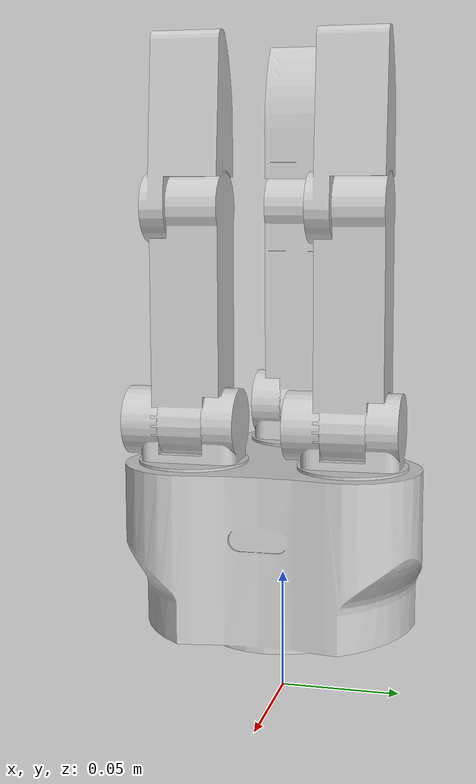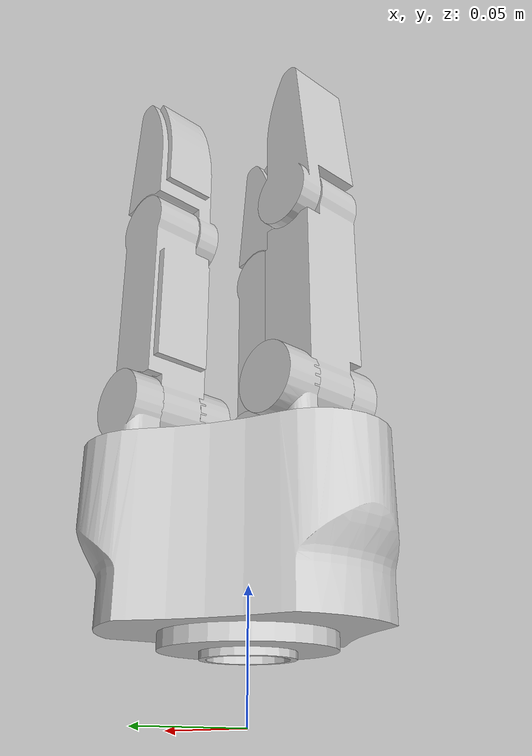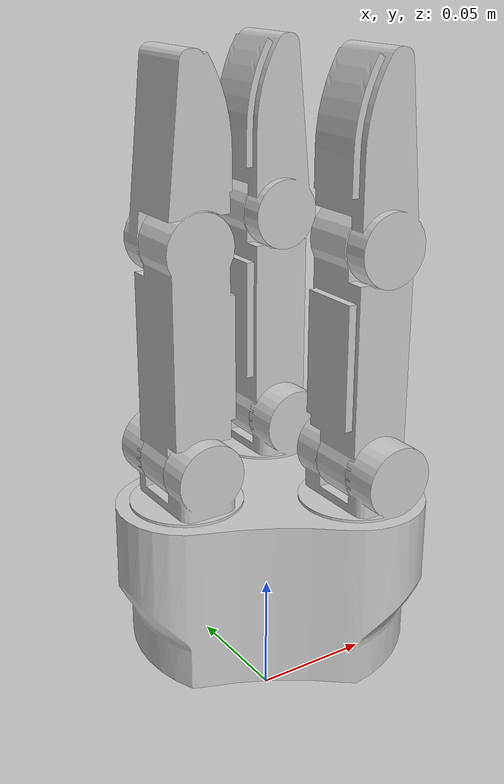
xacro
<?xml version="1.0"?>
<robot xmlns:xacro="http://www.ros.org/wiki/xacro"
       name="sdh" >

  <!-- common stuff -->
  <xacro:include filename="$(find schunk_description)/urdf/common.xacro" />
  <xacro:include filename="$(find schunk_description)/urdf/materials.urdf.xacro" />

  <!-- schunk pg70 -->
  <xacro:include filename="$(find schunk_description)/urdf/sdh/sdh.urdf.xacro" />

  <!-- Used for fixing robot to Gazebo -->
  <link name="world"/>

  <!-- arm -->
  <xacro:schunk_sdh name="sdh" parent="world">
    <origin xyz="0 0 0.026" rpy="0 0 0" /> <!--slightly above gazebo plane-->
  </xacro:schunk_sdh>

</robot>

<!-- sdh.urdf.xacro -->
<robot xmlns:xacro="http://www.ros.org/wiki/xacro">

  <xacro:include filename="$(find schunk_description)/urdf/common.xacro" />
  <xacro:include filename="$(find schunk_description)/urdf/sdh/sdh.gazebo.xacro" />
  <xacro:include filename="$(find schunk_description)/urdf/sdh/sdh.transmission.xacro" />

    <xacro:macro name="mimic_joint_plugin_gazebo" params="name_prefix parent_joint mimic_joint has_pid:=false multiplier:=1.0 offset:=0 sensitiveness:=0.0 max_effort:=1.0 robot_namespace:='${name}'">
    <gazebo>
      <plugin name="${name_prefix}mimic_joint_plugin" filename="libroboticsgroup_gazebo_mimic_joint_plugin.so">
        <joint>${parent_joint}</joint>
        <mimicJoint>${mimic_joint}</mimicJoint>
        <xacro:if value="${has_pid}">                     <!-- if set to true, PID parameters from "/gazebo_ros_control/pid_gains/${mimic_joint}" are loaded -->
          <hasPID />
        </xacro:if>
        <multiplier>${multiplier}</multiplier>
        <offset>${offset}</offset>
        <sensitiveness>${sensitiveness}</sensitiveness>   <!-- if absolute difference between setpoint and process value is below this threshold, do nothing; 0.0 = disable [rad] -->
        <maxEffort>${max_effort}</maxEffort>              <!-- only taken into account if has_pid:=true [Nm] -->
        <xacro:unless value="${robot_namespace == ''}">
          <robotNamespace>($robot_namespace)</robotNamespace>
        </xacro:unless>
      </plugin>
    </gazebo>
  </xacro:macro>

    <xacro:macro name="controller_plugin_gazebo" params="robot_namespace:='${name}''">
    <gazebo>
      <plugin name="gazebo_ros_control" filename="libgazebo_ros_control.so">
        <xacro:unless value="${robot_namespace == ''}">
          <robotNamespace>($robot_namespace)</robotNamespace>
        </xacro:unless>
        <controlPeriod>0.001</controlPeriod>
      </plugin>
    </gazebo>
  </xacro:macro>

  <controller_plugin_gazebo />

  <xacro:macro name="schunk_sdh" params="parent name *origin">

    <!-- joint between arm_7_link and sdh_palm_link -->
    <joint name="${name}_palm_joint" type="fixed" >
      <xacro:insert_block name="origin" />
      <parent link="${parent}" />
      <child link="${name}_palm_link" />
    </joint>

    <link name="${name}_palm_link">
      <inertial>
        <mass value="1.0288" /><!-- density 1652.3 kg/m3 adjusted to have final total mass of 1.95 -->
        <origin xyz="0 0 0.0386" />
        <inertia ixx="1.1896" ixy="0.0" ixz="0.0" iyy="1.1889" iyz="0.0" izz="1.55636" />
      </inertial>
      <visual>
        <origin xyz="0 0 0" rpy="0 0 0" />
        <geometry>
          <mesh filename="package://schunk_description/meshes/sdh/palm.stl" />
        </geometry>
        <material name="Schunk/LightGrey" />
      </visual>
      <collision>
        <origin xyz="0 0 0" rpy="0 0 0" />
        <geometry>
          <mesh filename="package://schunk_description/meshes/sdh/palm_collision.stl"/>
        </geometry>
      </collision>
    </link>

    <!-- grasp link -->
    <joint name="${name}_grasp_joint" type="fixed" >
      <origin xyz="0 0 0.15" rpy="0 0 0"/>
      <parent link="${name}_palm_link" />
      <child link="${name}_grasp_link" />
    </joint>

    <link name="${name}_grasp_link" />

    <!-- tip link -->
    <joint name="${name}_tip_joint" type="fixed" >
      <origin xyz="0 0 0.22" rpy="0 0 0"/>
      <parent link="${name}_palm_link" />
      <child link="${name}_tip_link" />
    </joint>

    <link name="${name}_tip_link" />

    <!-- finger1 -->
    <!-- joint between sdh_palm_link and sdh_finger_11_link -->
    <joint name="${name}_knuckle_joint" type="revolute">
      <origin xyz="0.01905 0.033 0.0745" rpy="0 0 3.14159265" />
      <parent link="${name}_palm_link"/>
      <child link="${name}_finger_11_link"/>
      <axis xyz="0 0 1" />
      <dynamics damping="1" />
      <limit effort="100" lower="0" upper="1.570796327" velocity="5"/>
    </joint>

    <link name="${name}_finger_11_link">
      <inertial>
        <mass value="0.047" /> <!-- density of aluminum -->
        <origin xyz="0.0 2.2105e-03 1.2155e-02" />
        <inertia ixx="1.5889e-01" ixy="0.0" ixz="0.0" iyy="6.9350e-01" iyz="-4.7500e-01" izz="1.4915e-01" />
      </inertial>
      <visual>
        <origin xyz="0 0 0" rpy="0 0 0" />
        <geometry>
          <mesh filename="package://schunk_description/meshes/sdh/knuckle.stl" />
        </geometry>
        <material name="Schunk/LightGrey" />
      </visual>
      <collision>
        <origin xyz="0 0 0" rpy="0 0 0" />
        <geometry>
        <mesh filename="package://schunk_description/meshes/sdh/knuckle_collision.stl"/>
        </geometry>
      </collision>
    </link>

    <!-- joint between sdh_finger_11_link and sdh_finger_12_link -->
    <joint name="${name}_finger_12_joint" type="revolute">
      <origin xyz="0 0 0.0165" rpy="0 0 0" />
      <parent link="${name}_finger_11_link"/>
      <child link="${name}_finger_12_link"/>
      <axis xyz="0 1 0" />
      <dynamics damping="1" />
      <limit effort="100" lower="-1.570796327" upper="1.570796327" velocity="5"/>
    </joint>

    <link name="${name}_finger_12_link">
      <inertial>
        <mass value="0.167" /> <!-- density of aluminum -->
        <origin xyz="0.0007467 -0.0000378 0.0430192" />
        <inertia ixx="1.5920e-01" ixy="0.0" ixz="-2.3750e-01" iyy="1.5903e-01" iyz="9.3100e-01" izz="1.9142e-01" />
      </inertial>
      <visual>
        <origin xyz="0 0 0" rpy="0 0 0" />
        <geometry>
          <mesh filename="package://schunk_description/meshes/sdh/finger.stl" />
        </geometry>
      <material name="Schunk/LightGrey" />
      </visual>
      <collision>
        <origin xyz="0 0 0" rpy="0 0 0" />
        <geometry>
          <mesh filename="package://schunk_description/meshes/sdh/finger.stl"/>
        </geometry>
      </collision>
    </link>

    <!-- joint between sdh_finger_12_link and sdh_finger_13_link -->
    <joint name="${name}_finger_13_joint" type="revolute">

      <origin xyz="0 0 0.0865" rpy="0 0 0" />
      <parent link="${name}_finger_12_link"/>
      <child link="${name}_finger_13_link"/>
      <axis xyz="0 1 0" />
      <dynamics damping="1" />
      <limit effort="100" lower="-1.570796327" upper="1.570796327" velocity="5"/>
    </joint>

    <link name="${name}_finger_13_link">
      <inertial>
        <mass value="0.0929" /> <!-- density of aluminum -->
        <origin xyz="0.0007467 -0.0000378 0.0430192" />
        <inertia ixx="4.2323e-01" ixy="1.9000e-01" ixz="-5.2250e-01" iyy="3.9734e-01" iyz="5.7950e-01" izz="1.1210e-01" />
      </inertial>
      <visual>
        <origin xyz="0 0 0" rpy="0 0 0" />
        <geometry>
          <mesh filename="package://schunk_description/meshes/sdh/finger_tip.stl" />
        </geometry>
        <material name="Schunk/LightGrey" />
      </visual>
      <collision>
        <origin xyz="0 0 0" rpy="0 0 0" />
        <geometry>
          <mesh filename="package://schunk_description/meshes/sdh/finger_tip.stl"/>
        </geometry>
      </collision>
    </link>

    <!-- finger2 -->
    <!-- joint between sdh_palm_link and sdh_finger_21_link -->
    <joint name="${name}_finger_21_joint" type="revolute">
      <mimic joint="${name}_knuckle_joint" multiplier="1" offset="0"/>
      <origin xyz="0.01905 -0.033 0.0745" rpy="0 0 3.14159265" />
      <parent link="${name}_palm_link"/>
      <child link="${name}_finger_21_link"/>
      <axis xyz="0 0 -1" />
      <dynamics damping="1" />
      <limit effort="100" lower="0" upper="1.570796327" velocity="5"/>
    </joint>

    <xacro:mimic_joint_plugin_gazebo name_prefix="${name}_finger_21_joint"
    parent_joint="${name}_knuckle_joint" mimic_joint="${name}_finger_21_joint"
    has_pid="true" multiplier="1.0" max_effort="10.0" />

    <link name="${name}_finger_21_link">
      <inertial>
        <mass value="0.047" /> <!-- density of aluminum -->
        <origin xyz="0.0 2.2105e-03 1.2155e-02" />
        <inertia ixx="1.5889e-01" ixy="0.0" ixz="0.0" iyy="6.9350e-01" iyz="-4.7500e-01" izz="1.4915e-01" />
      </inertial>
      <visual>
        <origin xyz="0 0 0" rpy="0 0 0" />
        <geometry>
          <mesh filename="package://schunk_description/meshes/sdh/knuckle.stl" />
        </geometry>
        <material name="Schunk/LightGrey" />
      </visual>
      <collision>
        <origin xyz="0 0 0" rpy="0 0 0" />
        <geometry>
          <mesh filename="package://schunk_description/meshes/sdh/knuckle_collision.stl"/>
        </geometry>
      </collision>
    </link>

    <!-- joint between sdh_finger_21_link and sdh_finger_22_link -->
    <joint name="${name}_finger_22_joint" type="revolute">
      <origin xyz="0 0 0.0165" rpy="0 0 0" />
      <parent link="${name}_finger_21_link"/>
      <child link="${name}_finger_22_link"/>
      <axis xyz="0 1 0" />
      <dynamics damping="1" />
      <limit effort="100" lower="-1.570796327" upper="1.570796327" velocity="5"/>
    </joint>

    <link name="${name}_finger_22_link">
      <inertial>
        <mass value="0.167" /> <!-- density of aluminum -->
        <origin xyz="0.0007467 -0.0000378 0.0430192" />
        <inertia ixx="1.5920e-01" ixy="0.0" ixz="-2.3750e-01" iyy="1.5903e-01" iyz="9.3100e-01" izz="1.9142e-01" />
      </inertial>
      <visual>
        <origin xyz="0 0 0" rpy="0 0 0" />
        <geometry>
          <mesh filename="package://schunk_description/meshes/sdh/finger.stl" />
        </geometry>
        <material name="Schunk/LightGrey" />
      </visual>
      <collision>
        <origin xyz="0 0 0" rpy="0 0 0" />
        <geometry>
          <mesh filename="package://schunk_description/meshes/sdh/finger.stl"/>
        </geometry>
      </collision>
    </link>

    <!-- joint between sdh_finger_22_link and sdh_finger_23_link -->
    <joint name="${name}_finger_23_joint" type="revolute">
      <origin xyz="0 0 0.0865" rpy="0 0 0" />
      <parent link="${name}_finger_22_link"/>
      <child link="${name}_finger_23_link"/>
      <axis xyz="0 1 0" />
      <dynamics damping="1" />
      <limit effort="100" lower="-1.570796327" upper="1.570796327" velocity="5"/>
    </joint>

    <link name="${name}_finger_23_link">
      <inertial>
        <mass value="0.0929" /> <!-- density of aluminum -->
        <origin xyz="0.0007467 -0.0000378 0.0430192" />
        <inertia ixx="4.2323e-01" ixy="1.9000e-01" ixz="-5.2250e-01" iyy="3.9734e-01" iyz="5.7950e-01" izz="1.1210e-01" />
      </inertial>
      <visual>
        <origin xyz="0 0 0" rpy="0 0 0" />
        <geometry>
          <mesh filename="package://schunk_description/meshes/sdh/finger_tip.stl" />
        </geometry>
        <material name="Schunk/LightGrey" />
      </visual>
      <collision>
        <origin xyz="0 0 0" rpy="0 0 0" />
        <geometry>
          <mesh filename="package://schunk_description/meshes/sdh/finger_tip.stl"/>
        </geometry>
      </collision>
    </link>

    <!-- thumb -->
    <!-- joint between sdh_palm_link and sdh_thumb_1_link -->
    <joint name="${name}_thumb_1_joint" type="fixed">
      <origin xyz="-0.03811 0 0.0745 " rpy="0 0 0" />
      <parent link="${name}_palm_link"/>
      <child link="${name}_thumb_1_link"/>
    </joint>

    <link name="${name}_thumb_1_link">
      <inertial>
        <mass value="0.047" /> <!-- density of aluminum -->
        <origin xyz="0.0 2.2105e-03 1.2155e-02" />
        <inertia ixx="1.5889e-01" ixy="0.0" ixz="0.0" iyy="6.9350e-01" iyz="-4.7500e-01" izz="1.4915e-01" />
      </inertial>
      <visual>
        <origin xyz="0 0 0" rpy="0 0 0" />
        <geometry>
          <mesh filename="package://schunk_description/meshes/sdh/knuckle.stl" />
        </geometry>
        <material name="Schunk/LightGrey" />
      </visual>
      <collision>
        <origin xyz="0 0 0" rpy="0 0 0" />
        <geometry>
          <mesh filename="package://schunk_description/meshes/sdh/knuckle_collision.stl"/>
        </geometry>
      </collision>
    </link>

    <!-- joint between sdh_thumb_1_link and shd_thumb_2_link -->
    <joint name="${name}_thumb_2_joint" type="revolute">
    <origin xyz="0 0 0.0165" rpy="0 0 0" />
    <parent link="${name}_thumb_1_link"/>
    <child link="${name}_thumb_2_link"/>
    <axis xyz="0 1 0" />
    <dynamics damping="1" />
    <limit effort="100" lower="-1.570796327" upper="1.570796327" velocity="5"/>
    </joint>

    <link name="${name}_thumb_2_link">
      <inertial>
        <mass value="0.167" /> <!-- density of aluminum -->
        <origin xyz="0.0007467 -0.0000378 0.0430192" />
        <inertia ixx="1.5920e-01" ixy="0.0" ixz="-2.3750e-01" iyy="1.5903e-01" iyz="9.3100e-01" izz="1.9142e-01" />
      </inertial>
      <visual>
        <origin xyz="0 0 0" rpy="0 0 0" />
        <geometry>
          <mesh filename="package://schunk_description/meshes/sdh/finger.stl" />
        </geometry>
        <material name="Schunk/LightGrey" />
      </visual>
      <collision>
        <origin xyz="0 0 0" rpy="0 0 0" />
        <geometry>
          <mesh filename="package://schunk_description/meshes/sdh/finger.stl"/>
        </geometry>
      </collision>
    </link>

    <!-- joint between sdh_thumb_2_link and sdh_thumb_3_link -->
    <joint name="${name}_thumb_3_joint" type="revolute">
      <origin xyz="0 0 0.0865" rpy="0 0 0" />
      <parent link="${name}_thumb_2_link"/>
      <child link="${name}_thumb_3_link"/>
      <axis xyz="0 1 0" />
      <dynamics damping="1" />
      <limit effort="100" lower="-1.570796327" upper="1.570796327" velocity="5"/>
    </joint>

    <link name="${name}_thumb_3_link">
      <inertial>
        <mass value="0.0929" /> <!-- density of aluminum -->
        <origin xyz="0.0007467 -0.0000378 0.0430192" />
        <inertia ixx="4.2323e-01" ixy="1.9000e-01" ixz="-5.2250e-01" iyy="3.9734e-01" iyz="5.7950e-01" izz="1.1210e-01" />
      </inertial>
      <visual>
        <origin xyz="0 0 0" rpy="0 0 0" />
        <geometry>
          <mesh filename="package://schunk_description/meshes/sdh/finger_tip.stl" />
        </geometry>
        <material name="Schunk/LightGrey" />
      </visual>
      <collision>
        <origin xyz="0 0 0" rpy="0 0 0" />
        <geometry>
          <mesh filename="package://schunk_description/meshes/sdh/finger_tip.stl"/>
        </geometry>
      </collision>
    </link>

    <!-- extensions -->
    <xacro:schunk_sdh_gazebo name="${name}" />
    <xacro:schunk_sdh_transmission name="${name}" />

    <!-- ros_control plugin -->
    <gazebo>
      <plugin name="ros_control" filename="libhwi_switch_gazebo_ros_control.so">
        <robotNamespace>${name}</robotNamespace>
        <filterJointsParam>joint_names</filterJointsParam>
      </plugin>
    </gazebo>

  </xacro:macro>

</robot>
